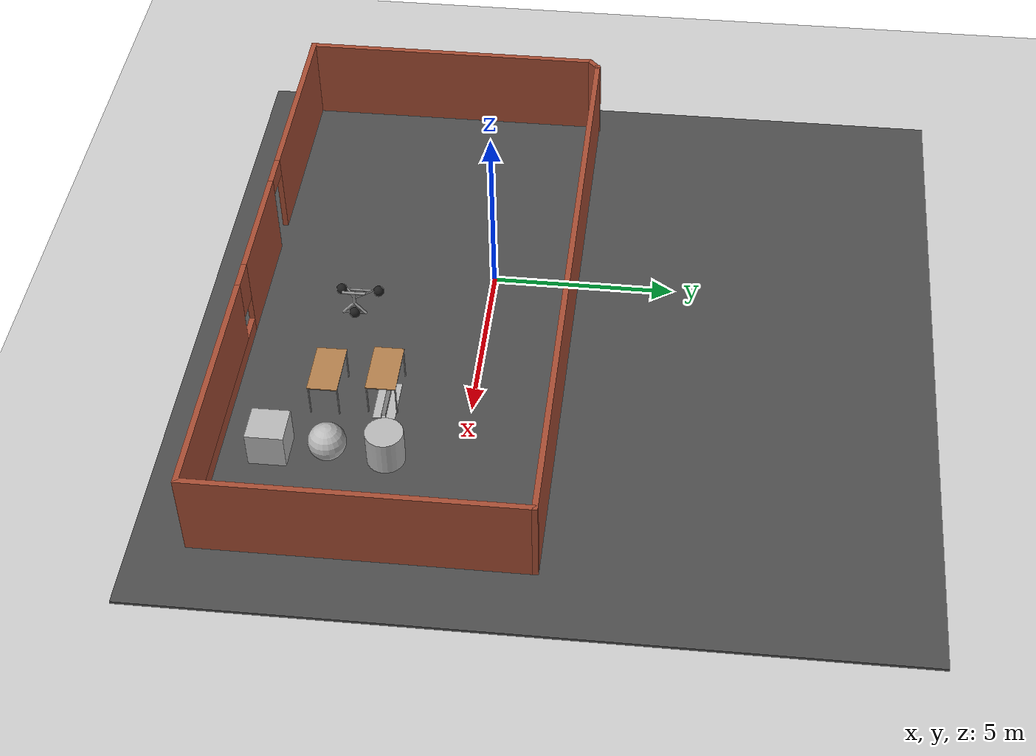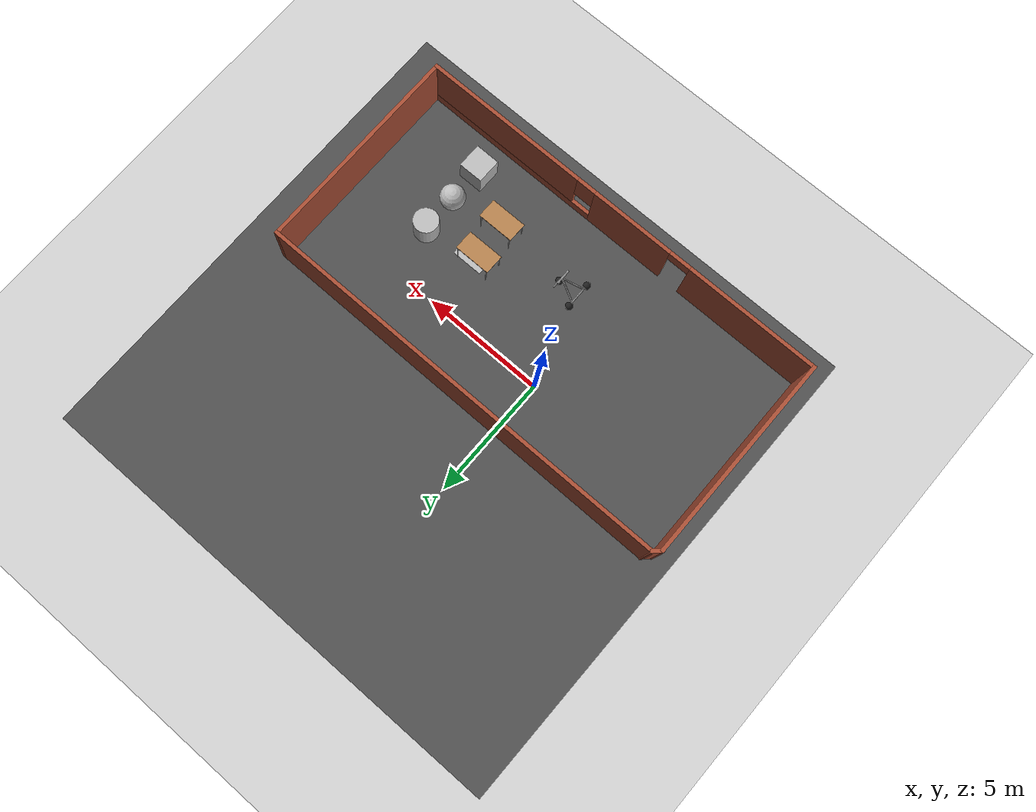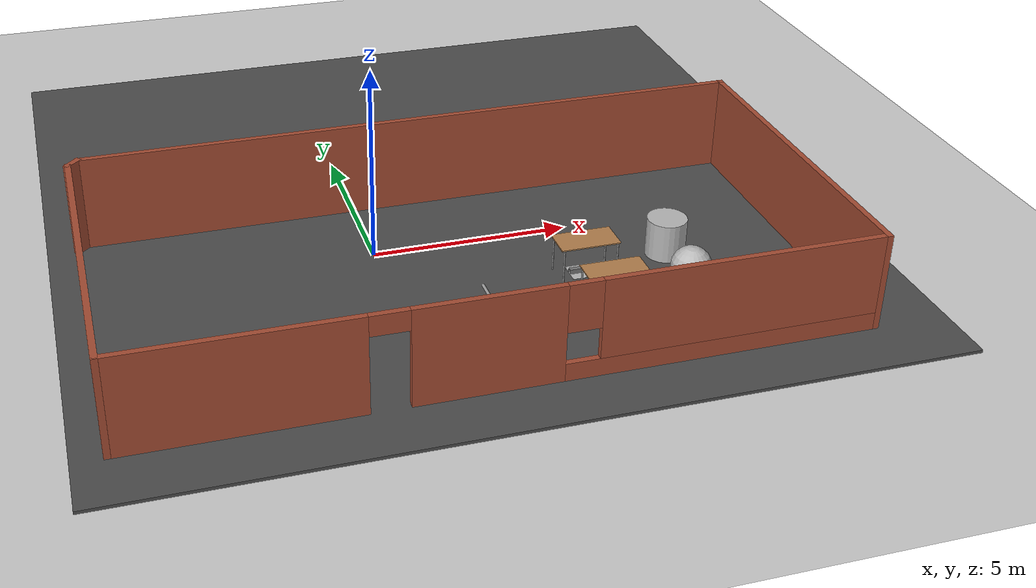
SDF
<sdf version="1.6">
 <world name="default">
  <light name="sun" type="directional">
   <pose>0 0 10 0 -0 0</pose>
   <diffuse>0.8 0.8 0.8 1</diffuse>
   <specular>0.2 0.2 0.2 1</specular>
   <attenuation>
    <range>1000</range>
    <constant>0.9</constant>
    <linear>0.01</linear>
    <quadratic>0.001</quadratic>
   </attenuation>
   <direction>-0.5 0.1 -0.9</direction>
  </light>
  <model name="ground_plane">
   <static>1</static>
   <link name="link">
    <collision name="collision">
     <geometry><plane><normal>0 0 1</normal><size>100 100</size></plane></geometry>
     <surface><friction><ode><mu>100</mu><mu2>50</mu2></ode></friction></surface>
    </collision>
    <visual name="visual">
     <cast_shadows>0</cast_shadows>
     <geometry><plane><normal>0 0 1</normal><size>100 100</size></plane></geometry>
     <material>
      <script><uri>file://media/materials/scripts/gazebo.material</uri><name>Gazebo/Grey</name></script>
     </material>
    </visual>
   </link>
  </model>
  <gravity>0 0 -9.8</gravity>
  <magnetic_field>6e-06 2.3e-05 -4.2e-05</magnetic_field>
  <atmosphere type="adiabatic"/>
  <physics name="default_physics" default="0" type="ode">
   <max_step_size>0.001</max_step_size>
   <real_time_factor>1</real_time_factor>
   <real_time_update_rate>1000</real_time_update_rate>
  </physics>
  <scene><ambient>0.4 0.4 0.4 1</ambient><background>0.7 0.7 0.7 1</background><shadows>1</shadows></scene>
  <spherical_coordinates>
   <surface_model>EARTH_WGS84</surface_model>
   <latitude_deg>0</latitude_deg>
   <longitude_deg>0</longitude_deg>
   <elevation>0</elevation>
   <heading_deg>0</heading_deg>
  </spherical_coordinates>
  <model name="trial_1">
   <pose>1.57157 -2.01108 0 0 -0 0</pose>
   <link name="Wall_0">
    <collision name="Wall_0_Collision">
     <geometry><box><size>8.5 0.15 2.5</size></box></geometry>
     <pose>0 0 1.25 0 -0 0</pose>
    </collision>
    <visual name="Wall_0_Visual">
     <pose>0 0 1.25 0 -0 0</pose>
     <geometry><box><size>8.5 0.15 2.5</size></box></geometry>
     <material>
      <script><uri>file://media/materials/scripts/gazebo.material</uri><name>Gazebo/Bricks</name></script>
      <ambient>1 1 1 1</ambient>
     </material>
     <meta><layer>0</layer></meta>
    </visual>
    <pose>-8.65947 -0.140533 0 0 -0 -1.5708</pose>
   </link>
   <link name="Wall_1">
    <pose>0.015532 -4.31553 0 0 -0 0</pose>
    <visual name="Wall_1_Visual_0">
     <pose>-5.98554 0 1.25 0 -0 0</pose>
     <geometry><box><size>5.52891 0.15 2.5</size></box></geometry>
     <material>
      <script><uri>file://media/materials/scripts/gazebo.material</uri><name>Gazebo/Bricks</name></script>
      <ambient>1 1 1 1</ambient>
     </material>
     <meta><layer>0</layer></meta>
    </visual>
    <collision name="Wall_1_Collision_0">
     <geometry><box><size>5.52891 0.15 2.5</size></box></geometry>
     <pose>-5.98554 0 1.25 0 -0 0</pose>
    </collision>
    <visual name="Wall_1_Visual_1">
     <pose>-0.60477 0 1.25 0 -0 0</pose>
     <geometry><box><size>3.43263 0.15 2.5</size></box></geometry>
     <material>
      <script><uri>file://media/materials/scripts/gazebo.material</uri><name>Gazebo/Bricks</name></script>
      <ambient>1 1 1 1</ambient>
     </material>
     <meta><layer>0</layer></meta>
    </visual>
    <collision name="Wall_1_Collision_1">
     <geometry><box><size>3.43263 0.15 2.5</size></box></geometry>
     <pose>-0.60477 0 1.25 0 -0 0</pose>
    </collision>
    <visual name="Wall_1_Visual_2">
     <pose>4.93077 0 0.25 0 -0 0</pose>
     <geometry><box><size>7.63845 0.15 0.5</size></box></geometry>
     <material>
      <script><uri>file://media/materials/scripts/gazebo.material</uri><name>Gazebo/Bricks</name></script>
      <ambient>1 1 1 1</ambient>
     </material>
     <meta><layer>0</layer></meta>
    </visual>
    <collision name="Wall_1_Collision_2">
     <geometry><box><size>7.63845 0.15 0.5</size></box></geometry>
     <pose>4.93077 0 0.25 0 -0 0</pose>
    </collision>
    <visual name="Wall_1_Visual_3">
     <pose>5.33077 0 1.5 0 -0 0</pose>
     <geometry><box><size>6.83845 0.15 2</size></box></geometry>
     <material>
      <script><uri>file://media/materials/scripts/gazebo.material</uri><name>Gazebo/Bricks</name></script>
      <ambient>1 1 1 1</ambient>
     </material>
     <meta><layer>0</layer></meta>
    </visual>
    <collision name="Wall_1_Collision_3">
     <geometry><box><size>6.83845 0.15 2</size></box></geometry>
     <pose>5.33077 0 1.5 0 -0 0</pose>
    </collision>
    <visual name="Wall_1_Visual_4">
     <pose>1.51155 0 1.9 0 -0 0</pose>
     <geometry><box><size>0.8 0.15 1.2</size></box></geometry>
     <material>
      <script><uri>file://media/materials/scripts/gazebo.material</uri><name>Gazebo/Bricks</name></script>
      <ambient>1 1 1 1</ambient>
     </material>
     <meta><layer>0</layer></meta>
    </visual>
    <collision name="Wall_1_Collision_4">
     <geometry><box><size>0.8 0.15 1.2</size></box></geometry>
     <pose>1.51155 0 1.9 0 -0 0</pose>
    </collision>
    <visual name="Wall_1_Visual_5">
     <pose>-2.77109 0 2.25 0 -0 0</pose>
     <geometry><box><size>0.9 0.15 0.5</size></box></geometry>
     <material>
      <script><uri>file://media/materials/scripts/gazebo.material</uri><name>Gazebo/Bricks</name></script>
      <ambient>1 1 1 1</ambient>
     </material>
     <meta><layer>0</layer></meta>
    </visual>
    <collision name="Wall_1_Collision_5">
     <geometry><box><size>0.9 0.15 0.5</size></box></geometry>
     <pose>-2.77109 0 2.25 0 -0 0</pose>
    </collision>
   </link>
   <link name="Wall_2">
    <collision name="Wall_2_Collision">
     <geometry><box><size>8.75 0.15 2.5</size></box></geometry>
     <pose>0 0 1.25 0 -0 0</pose>
    </collision>
    <visual name="Wall_2_Visual">
     <pose>0 0 1.25 0 -0 0</pose>
     <geometry><box><size>8.75 0.15 2.5</size></box></geometry>
     <material>
      <script><uri>file://media/materials/scripts/gazebo.material</uri><name>Gazebo/Bricks</name></script>
      <ambient>0.760784 0.662745 0.627451 1</ambient>
     </material>
     <meta><layer>0</layer></meta>
    </visual>
    <pose>8.69053 -0.015533 0 0 -0 1.5708</pose>
   </link>
   <link name="Wall_3">
    <collision name="Wall_3_Collision">
     <geometry><box><size>17.25 0.15 2.5</size></box></geometry>
     <pose>0 0 1.25 0 -0 0</pose>
    </collision>
    <visual name="Wall_3_Visual">
     <pose>0 0 1.25 0 -0 0</pose>
     <geometry><box><size>17.25 0.15 2.5</size></box></geometry>
     <material>
      <script><uri>file://media/materials/scripts/gazebo.material</uri><name>Gazebo/Bricks</name></script>
      <ambient>1 1 1 1</ambient>
     </material>
     <meta><layer>0</layer></meta>
    </visual>
    <pose>0.140532 4.28447 0 0 -0 3.14159</pose>
   </link>
   <link name="Wall_4">
    <collision name="Wall_4_Collision">
     <geometry><box><size>0.503553 0.15 2.5</size></box></geometry>
     <pose>0 0 1.25 0 -0 0</pose>
    </collision>
    <visual name="Wall_4_Visual">
     <pose>0 0 1.25 0 -0 0</pose>
     <geometry><box><size>0.503553 0.15 2.5</size></box></geometry>
     <material>
      <script><uri>file://media/materials/scripts/gazebo.material</uri><name>Gazebo/Bricks</name></script>
      <ambient>1 1 1 1</ambient>
     </material>
     <meta><layer>0</layer></meta>
    </visual>
    <pose>-8.53447 4.15947 0 0 -0 -2.35619</pose>
   </link>
   <static>1</static>
  </model>
  <model name="asphalt_plane">
   <static>1</static>
   <link name="link">
    <collision name="collision"><geometry><box><size>20 20 0.1</size></box></geometry></collision>
    <visual name="visual">
     <cast_shadows>0</cast_shadows>
     <geometry><box><size>20 20 0.1</size></box></geometry>
     <material>
      <script>
       <uri>model://asphalt_plane/materials/scripts</uri>
       <uri>model://asphalt_plane/materials/textures</uri>
       <name>vrc/asphalt</name>
      </script>
     </material>
    </visual>
   </link>
   <pose>2.14221 2.17724 0 0 -0 0</pose>
  </model>
  <model name="table">
   <static>1</static>
   <link name="link">
    <collision name="surface">
     <pose>0 0 1 0 -0 0</pose>
     <geometry><box><size>1.5 0.8 0.03</size></box></geometry>
     <surface><friction><ode><mu>0.6</mu><mu2>0.6</mu2></ode></friction></surface>
    </collision>
    <visual name="visual1">
     <pose>0 0 1 0 -0 0</pose>
     <geometry><box><size>1.5 0.8 0.03</size></box></geometry>
     <material>
      <script><uri>file://media/materials/scripts/gazebo.material</uri><name>Gazebo/Wood</name></script>
     </material>
    </visual>
    <collision name="front_left_leg">
     <pose>0.68 0.38 0.5 0 -0 0</pose>
     <geometry><cylinder><radius>0.02</radius><length>1</length></cylinder></geometry>
    </collision>
    <visual name="front_left_leg">
     <pose>0.68 0.38 0.5 0 -0 0</pose>
     <geometry><cylinder><radius>0.02</radius><length>1</length></cylinder></geometry>
     <material>
      <script><uri>file://media/materials/scripts/gazebo.material</uri><name>Gazebo/Grey</name></script>
     </material>
    </visual>
    <collision name="front_right_leg">
     <pose>0.68 -0.38 0.5 0 -0 0</pose>
     <geometry><cylinder><radius>0.02</radius><length>1</length></cylinder></geometry>
    </collision>
    <visual name="front_right_leg">
     <pose>0.68 -0.38 0.5 0 -0 0</pose>
     <geometry><cylinder><radius>0.02</radius><length>1</length></cylinder></geometry>
     <material>
      <script><uri>file://media/materials/scripts/gazebo.material</uri><name>Gazebo/Grey</name></script>
     </material>
    </visual>
    <collision name="back_right_leg">
     <pose>-0.68 -0.38 0.5 0 -0 0</pose>
     <geometry><cylinder><radius>0.02</radius><length>1</length></cylinder></geometry>
    </collision>
    <visual name="back_right_leg">
     <pose>-0.68 -0.38 0.5 0 -0 0</pose>
     <geometry><cylinder><radius>0.02</radius><length>1</length></cylinder></geometry>
     <material>
      <script><uri>file://media/materials/scripts/gazebo.material</uri><name>Gazebo/Grey</name></script>
     </material>
    </visual>
    <collision name="back_left_leg">
     <pose>-0.68 0.38 0.5 0 -0 0</pose>
     <geometry><cylinder><radius>0.02</radius><length>1</length></cylinder></geometry>
    </collision>
    <visual name="back_left_leg">
     <pose>-0.68 0.38 0.5 0 -0 0</pose>
     <geometry><cylinder><radius>0.02</radius><length>1</length></cylinder></geometry>
     <material>
      <script><uri>file://media/materials/scripts/gazebo.material</uri><name>Gazebo/Grey</name></script>
     </material>
    </visual>
   </link>
   <pose>4.87254 -3.80948 0 0 -0 0</pose>
  </model>
  <model name="table_0">
   <static>1</static>
   <link name="link">
    <collision name="surface">
     <pose>0 0 1 0 -0 0</pose>
     <geometry><box><size>1.5 0.8 0.03</size></box></geometry>
     <surface><friction><ode><mu>0.6</mu><mu2>0.6</mu2></ode></friction></surface>
    </collision>
    <visual name="visual1">
     <pose>0 0 1 0 -0 0</pose>
     <geometry><box><size>1.5 0.8 0.03</size></box></geometry>
     <material>
      <script><uri>file://media/materials/scripts/gazebo.material</uri><name>Gazebo/Wood</name></script>
     </material>
    </visual>
    <collision name="front_left_leg">
     <pose>0.68 0.38 0.5 0 -0 0</pose>
     <geometry><cylinder><radius>0.02</radius><length>1</length></cylinder></geometry>
    </collision>
    <visual name="front_left_leg">
     <pose>0.68 0.38 0.5 0 -0 0</pose>
     <geometry><cylinder><radius>0.02</radius><length>1</length></cylinder></geometry>
     <material>
      <script><uri>file://media/materials/scripts/gazebo.material</uri><name>Gazebo/Grey</name></script>
     </material>
    </visual>
    <collision name="front_right_leg">
     <pose>0.68 -0.38 0.5 0 -0 0</pose>
     <geometry><cylinder><radius>0.02</radius><length>1</length></cylinder></geometry>
    </collision>
    <visual name="front_right_leg">
     <pose>0.68 -0.38 0.5 0 -0 0</pose>
     <geometry><cylinder><radius>0.02</radius><length>1</length></cylinder></geometry>
     <material>
      <script><uri>file://media/materials/scripts/gazebo.material</uri><name>Gazebo/Grey</name></script>
     </material>
    </visual>
    <collision name="back_right_leg">
     <pose>-0.68 -0.38 0.5 0 -0 0</pose>
     <geometry><cylinder><radius>0.02</radius><length>1</length></cylinder></geometry>
    </collision>
    <visual name="back_right_leg">
     <pose>-0.68 -0.38 0.5 0 -0 0</pose>
     <geometry><cylinder><radius>0.02</radius><length>1</length></cylinder></geometry>
     <material>
      <script><uri>file://media/materials/scripts/gazebo.material</uri><name>Gazebo/Grey</name></script>
     </material>
    </visual>
    <collision name="back_left_leg">
     <pose>-0.68 0.38 0.5 0 -0 0</pose>
     <geometry><cylinder><radius>0.02</radius><length>1</length></cylinder></geometry>
    </collision>
    <visual name="back_left_leg">
     <pose>-0.68 0.38 0.5 0 -0 0</pose>
     <geometry><cylinder><radius>0.02</radius><length>1</length></cylinder></geometry>
     <material>
      <script><uri>file://media/materials/scripts/gazebo.material</uri><name>Gazebo/Grey</name></script>
     </material>
    </visual>
   </link>
   <pose>4.70293 -2.30594 0 0 -0 0</pose>
  </model>
  <model name="trisphere_cycle">
   <link name="frame">
    <pose>-0.408559 0 0.385023 0 -0.522021 0</pose>
    <inertial>
     <mass>10</mass>
     <inertia><ixx>0.228</ixx><iyy>0.743521</iyy><izz>0.965521</izz><ixy>0</ixy><ixz>0</ixz><iyz>0</iyz></inertia>
    </inertial>
    <collision name="axle_collision">
     <pose>-0.471335 0 0 1.5708 -0 0</pose>
     <geometry><cylinder><length>1.03923</length><radius>0.03</radius></cylinder></geometry>
    </collision>
    <visual name="axle_visual">
     <pose>-0.471335 0 0 1.5708 -0 0</pose>
     <geometry><cylinder><length>1.03923</length><radius>0.03</radius></cylinder></geometry>
     <material>
      <script><uri>file://media/materials/scripts/gazebo.material</uri><name>Gazebo/Grey</name></script>
     </material>
    </visual>
    <collision name="frame_left_collision">
     <pose>0 0.171552 0 -2.79253 1.57079 3.14159</pose>
     <geometry><cylinder><length>1.00317</length><radius>0.03</radius></cylinder></geometry>
    </collision>
    <visual name="frame_left_visual">
     <pose>0 0.171552 0 -2.79253 1.57079 3.14159</pose>
     <geometry><cylinder><length>1.00317</length><radius>0.03</radius></cylinder></geometry>
     <material>
      <script><uri>file://media/materials/scripts/gazebo.material</uri><name>Gazebo/Grey</name></script>
     </material>
    </visual>
    <collision name="frame_right_collision">
     <pose>0 -0.171552 0 2.79253 1.57079 -3.14159</pose>
     <geometry><cylinder><length>1.00317</length><radius>0.03</radius></cylinder></geometry>
    </collision>
    <visual name="frame_right_visual">
     <pose>0 -0.171552 0 2.79253 1.57079 -3.14159</pose>
     <geometry><cylinder><length>1.00317</length><radius>0.03</radius></cylinder></geometry>
     <material>
      <script><uri>file://media/materials/scripts/gazebo.material</uri><name>Gazebo/Grey</name></script>
     </material>
    </visual>
   </link>
   <link name="fork">
    <pose>0.041441 0 0.385023 0 -0.174533 0</pose>
    <inertial>
     <mass>3</mass>
     <inertia>
      <ixx>0.158203</ixx>
      <iyy>0.0583594</iyy>
      <izz>0.102656</izz>
      <ixy>0</ixy>
      <ixz>0</ixz>
      <iyz>0</iyz>
     </inertia>
    </inertial>
    <collision name="handlebars_collision">
     <pose>0 0 0.397748 1.5708 -0 0</pose>
     <geometry><cylinder><length>0.636396</length><radius>0.0375</radius></cylinder></geometry>
    </collision>
    <visual name="handlebars_visual">
     <pose>0 0 0.397748 1.5708 -0 0</pose>
     <geometry><cylinder><length>0.636396</length><radius>0.0375</radius></cylinder></geometry>
     <material>
      <script><uri>file://media/materials/scripts/gazebo.material</uri><name>Gazebo/Grey</name></script>
     </material>
    </visual>
    <collision name="headtube_collision">
     <pose>0 0 0.238649 0 -0 0</pose>
     <geometry><cylinder><length>0.318198</length><radius>0.0375</radius></cylinder></geometry>
    </collision>
    <visual name="headtube_visual">
     <pose>0 0 0.238649 0 -0 0</pose>
     <geometry><cylinder><length>0.318198</length><radius>0.0375</radius></cylinder></geometry>
     <material>
      <script><uri>file://media/materials/scripts/gazebo.material</uri><name>Gazebo/Grey</name></script>
     </material>
    </visual>
    <collision name="spindle_collision">
     <pose>0 0 -0.238649 1.5708 -0 0</pose>
     <geometry><cylinder><length>0.636396</length><radius>0.015</radius></cylinder></geometry>
    </collision>
    <visual name="spindle_visual">
     <pose>0 0 -0.238649 1.5708 -0 0</pose>
     <geometry><cylinder><length>0.636396</length><radius>0.015</radius></cylinder></geometry>
     <material>
      <script><uri>file://media/materials/scripts/gazebo.material</uri><name>Gazebo/Grey</name></script>
     </material>
    </visual>
    <collision name="fork_left_collision">
     <pose>0 0.159099 -0.07955 0.785398 -0 0</pose>
     <geometry><cylinder><length>0.45</length><radius>0.0375</radius></cylinder></geometry>
    </collision>
    <visual name="fork_left_visual">
     <pose>0 0.159099 -0.07955 0.785398 -0 0</pose>
     <geometry><cylinder><length>0.45</length><radius>0.0375</radius></cylinder></geometry>
     <material>
      <script><uri>file://media/materials/scripts/gazebo.material</uri><name>Gazebo/Grey</name></script>
     </material>
    </visual>
    <collision name="fork_right_collision">
     <pose>0 -0.159099 -0.07955 -0.785398 0 0</pose>
     <geometry><cylinder><length>0.45</length><radius>0.0375</radius></cylinder></geometry>
    </collision>
    <visual name="fork_right_visual">
     <pose>0 -0.159099 -0.07955 -0.785398 0 0</pose>
     <geometry><cylinder><length>0.45</length><radius>0.0375</radius></cylinder></geometry>
     <material>
      <script><uri>file://media/materials/scripts/gazebo.material</uri><name>Gazebo/Grey</name></script>
     </material>
    </visual>
   </link>
   <link name="wheel_front">
    <pose>0.082882 0 0.15 0 -0 0</pose>
    <inertial>
     <mass>0.5</mass>
     <inertia><ixx>0.0045</ixx><iyy>0.0045</iyy><izz>0.0045</izz><ixy>0</ixy><ixz>0</ixz><iyz>0</iyz></inertia>
    </inertial>
    <collision name="collision">
     <geometry><sphere><radius>0.15</radius></sphere></geometry>
     <surface><contact><ode><kp>1e+08</kp><kd>1</kd><min_depth>0.0005</min_depth></ode></contact></surface>
    </collision>
    <visual name="visual">
     <geometry><sphere><radius>0.15</radius></sphere></geometry>
     <material>
      <script><uri>file://media/materials/scripts/gazebo.material</uri><name>Gazebo/Black</name></script>
     </material>
    </visual>
   </link>
   <joint name="wheel_front_steer" type="revolute">
    <parent>frame</parent>
    <child>fork</child>
    <axis>
     <xyz>0 0 1</xyz>
     <limit><lower>-0.959931</lower><upper>0.959931</upper></limit>
     <use_parent_model_frame>0</use_parent_model_frame>
     <dynamics><spring_reference>0</spring_reference><spring_stiffness>0</spring_stiffness></dynamics>
    </axis>
   </joint>
   <joint name="wheel_front_spin" type="revolute">
    <parent>fork</parent>
    <child>wheel_front</child>
    <axis>
     <xyz>0 1 0</xyz>
     <use_parent_model_frame>0</use_parent_model_frame>
     <limit><lower>-1e+16</lower><upper>1e+16</upper></limit>
     <dynamics><spring_reference>0</spring_reference><spring_stiffness>0</spring_stiffness></dynamics>
    </axis>
   </joint>
   <link name="wheel_rear_left">
    <pose>-0.817118 0.519615 0.15 0 -0 0</pose>
    <inertial>
     <mass>0.5</mass>
     <inertia><ixx>0.0045</ixx><iyy>0.0045</iyy><izz>0.0045</izz><ixy>0</ixy><ixz>0</ixz><iyz>0</iyz></inertia>
    </inertial>
    <collision name="collision">
     <geometry><sphere><radius>0.15</radius></sphere></geometry>
     <surface><contact><ode><kp>1e+08</kp><kd>1</kd><min_depth>0.0005</min_depth></ode></contact></surface>
    </collision>
    <visual name="visual">
     <geometry><sphere><radius>0.15</radius></sphere></geometry>
     <material>
      <script><uri>file://media/materials/scripts/gazebo.material</uri><name>Gazebo/Black</name></script>
     </material>
    </visual>
   </link>
   <joint name="wheel_rear_left_spin" type="revolute">
    <parent>frame</parent>
    <child>wheel_rear_left</child>
    <axis>
     <xyz>0 1 0</xyz>
     <use_parent_model_frame>0</use_parent_model_frame>
     <limit><lower>-1e+16</lower><upper>1e+16</upper></limit>
     <dynamics><spring_reference>0</spring_reference><spring_stiffness>0</spring_stiffness></dynamics>
    </axis>
   </joint>
   <link name="wheel_rear_right">
    <pose>-0.817118 -0.519615 0.15 0 -0 0</pose>
    <inertial>
     <mass>0.5</mass>
     <inertia><ixx>0.0045</ixx><iyy>0.0045</iyy><izz>0.0045</izz><ixy>0</ixy><ixz>0</ixz><iyz>0</iyz></inertia>
    </inertial>
    <collision name="collision">
     <geometry><sphere><radius>0.15</radius></sphere></geometry>
     <surface><contact><ode><kp>1e+08</kp><kd>1</kd><min_depth>0.0005</min_depth></ode></contact></surface>
    </collision>
    <visual name="visual">
     <geometry><sphere><radius>0.15</radius></sphere></geometry>
     <material>
      <script><uri>file://media/materials/scripts/gazebo.material</uri><name>Gazebo/Black</name></script>
     </material>
    </visual>
   </link>
   <joint name="wheel_rear_right_spin" type="revolute">
    <parent>frame</parent>
    <child>wheel_rear_right</child>
    <axis>
     <xyz>0 1 0</xyz>
     <use_parent_model_frame>0</use_parent_model_frame>
     <limit><lower>-1e+16</lower><upper>1e+16</upper></limit>
     <dynamics><spring_reference>0</spring_reference><spring_stiffness>0</spring_stiffness></dynamics>
    </axis>
   </joint>
   <pose>1.81398 -3.65917 0.049499 -0 1e-06 0.004578</pose>
  </model>
  <model name="textured_shapes">
   <pose>6.97671 -3.45099 0.55 0 -0 0</pose>
   <link name="box">
    <pose>0 -1.5 0 0 -0 0</pose>
    <collision name="collision"><geometry><box><size>1 1 1</size></box></geometry></collision>
    <visual name="visual">
     <geometry><box><size>1 1 1</size></box></geometry>
     <material>
      <script>
       <uri>model://textured_shapes/materials/scripts</uri>
       <uri>model://textured_shapes/materials/textures</uri>
       <name>TexturedShape/Squares</name>
      </script>
     </material>
    </visual>
    <inertial>
     <inertia><ixx>1</ixx><ixy>0</ixy><ixz>0</ixz><iyy>1</iyy><iyz>0</iyz><izz>1</izz></inertia>
     <mass>1</mass>
    </inertial>
   </link>
   <link name="sphere">
    <collision name="collision"><geometry><sphere><radius>0.5</radius></sphere></geometry></collision>
    <visual name="visual">
     <geometry><sphere><radius>0.5</radius></sphere></geometry>
     <material>
      <script>
       <uri>model://textured_shapes/materials/scripts</uri>
       <uri>model://textured_shapes/materials/textures</uri>
       <name>TexturedShape/Squares</name>
      </script>
     </material>
    </visual>
    <inertial>
     <inertia><ixx>1</ixx><ixy>0</ixy><ixz>0</ixz><iyy>1</iyy><iyz>0</iyz><izz>1</izz></inertia>
     <mass>1</mass>
    </inertial>
   </link>
   <link name="cylinder">
    <pose>0 1.5 0 0 -0 0</pose>
    <collision name="collision">
     <geometry><cylinder><radius>0.5</radius><length>1</length></cylinder></geometry>
    </collision>
    <visual name="visual">
     <geometry><cylinder><radius>0.5</radius><length>1</length></cylinder></geometry>
     <material>
      <script>
       <uri>model://textured_shapes/materials/scripts</uri>
       <uri>model://textured_shapes/materials/textures</uri>
       <name>TexturedShape/Squares</name>
      </script>
     </material>
    </visual>
    <inertial>
     <inertia><ixx>1</ixx><ixy>0</ixy><ixz>0</ixz><iyy>1</iyy><iyz>0</iyz><izz>1</izz></inertia>
     <mass>1</mass>
    </inertial>
   </link>
  </model>
  <model name="frc2016_rockwall">
   <static>1</static>
   <link name="link">
    <inertial>
     <mass>10</mass>
     <pose>0 0 0.08974 0 -0 0</pose>
     <inertia><ixx>0.327091</ixx><ixy>0</ixy><ixz>0</ixz><iyy>1.37417</iyy><iyz>0</iyz><izz>1.64109</izz></inertia>
    </inertial>
    <visual name="platform">
     <pose>0 0 0.06432 0 -0 0</pose>
     <geometry><box><size>1.27 0.5969 0.003175</size></box></geometry>
    </visual>
    <collision name="platform">
     <pose>0 0 0.06432 0 -0 0</pose>
     <geometry><box><size>1.27 0.5969 0.003175</size></box></geometry>
    </collision>
    <visual name="up1">
     <pose>0 0.05166 0.12537 0 -0 0</pose>
     <geometry><box><size>1.27 0.00462 0.11892</size></box></geometry>
     <material><ambient>0.46 0.46 0.46 1</ambient><diffuse>0.46 0.46 0.46 1</diffuse></material>
    </visual>
    <collision name="up1">
     <pose>0 0.05166 0.12537 0 -0 0</pose>
     <geometry><box><size>1.27 0.00462 0.11892</size></box></geometry>
    </collision>
    <visual name="up2">
     <pose>0 -0.05801 0.12537 0 -0 0</pose>
     <geometry><box><size>1.27 0.00462 0.11892</size></box></geometry>
     <material><ambient>0.46 0.46 0.46 1</ambient><diffuse>0.46 0.46 0.46 1</diffuse></material>
    </visual>
    <collision name="up2">
     <pose>0 -0.05801 0.12537 0 -0 0</pose>
     <geometry><box><size>1.27 0.00462 0.11892</size></box></geometry>
    </collision>
    <visual name="top">
     <pose>0 -0.00249 0.18252 0 -0 0</pose>
     <geometry><box><size>1.27 0.1143 0.00462</size></box></geometry>
     <material><ambient>0.46 0.46 0.46 1</ambient><diffuse>0.46 0.46 0.46 1</diffuse></material>
    </visual>
    <collision name="top">
     <pose>0 -0.00249 0.18252 0 -0 0</pose>
     <geometry><box><size>1.27 0.1143 0.00462</size></box></geometry>
    </collision>
   </link>
   <pose>4.97616 -2.24698 0 0 -0 0</pose>
  </model>
 </world>
</sdf>
